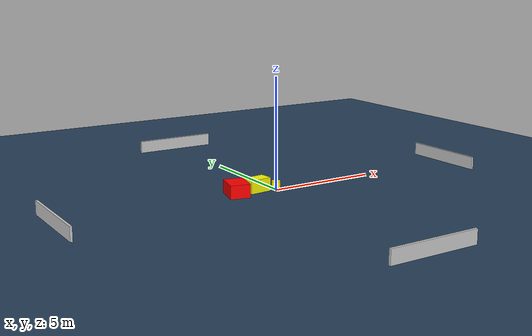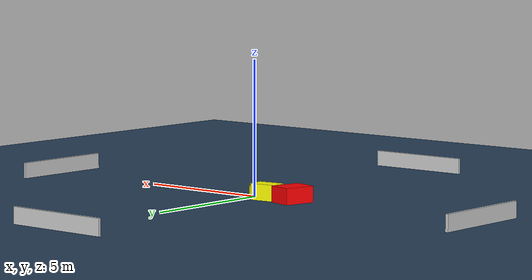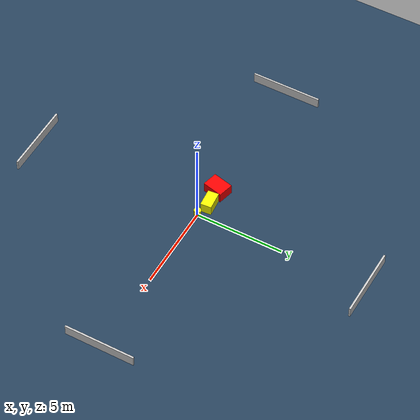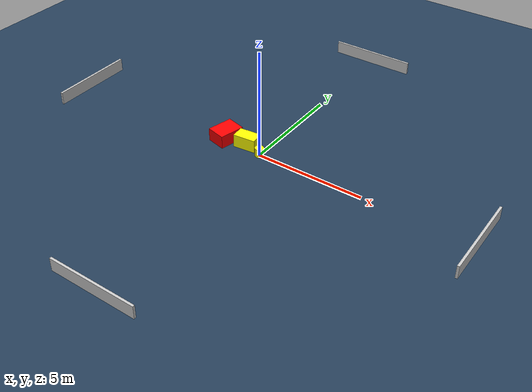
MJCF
<?xml version="1.0" ?>
<mujoco model="generated_environment">
  <option timestep="0.01" integrator="RK4" cone="elliptic"/>
  <default>
    <geom density="1"/>
  </default>
  <asset>
    <texture builtin="gradient" height="3072" name="skybox" rgb1="0.3 0.5 0.7" rgb2="0 0 0" type="skybox" width="512"/>
    <texture builtin="checker" height="300" name="groundplane" rgb1="0.2 0.3 0.4" rgb2="0.1 0.2 0.3" type="2d" width="300"/>
    <material name="groundplane" reflectance="0.2" texrepeat="5 5" texture="groundplane"/>
  </asset>
  <worldbody>
    <light dir="0 0 -1" directional="true" pos="0 0 1.5"/>
    <geom condim="3" friction="0.5 0.005 0.001" material="groundplane" name="floor" pos="0 0 0" size="0 0 0.05" type="plane"/>
    <body name="walls">
      <geom name="wall_1" condim="4" pos="-10.0 0.0 0.3" rgba="0.800000011920929 0.800000011920929 0.800000011920929 1.0" size="0.05 2.0 0.3" type="box"/>
      <geom name="wall_2" condim="4" pos="10.0 0.0 0.3" rgba="0.800000011920929 0.800000011920929 0.800000011920929 1.0" size="0.05 2.0 0.3" type="box"/>
      <geom name="wall_3" condim="4" pos="0.0 -10.0 0.3" rgba="0.800000011920929 0.800000011920929 0.800000011920929 1.0" size="2.0 0.05 0.3" type="box"/>
      <geom name="wall_4" condim="4" pos="0.0 10.0 0.3" rgba="0.800000011920929 0.800000011920929 0.800000011920929 1.0" size="2.0 0.05 0.3" type="box"/>
    </body>
    <body name="robot">
      <joint name="joint_x" type="slide" pos="0 0 0" axis="1 0 0"/>
      <joint name="joint_y" type="slide" pos="0 0 0" axis="0 1 0"/>
      <geom name="robot" type="cylinder" pos="0.0 0.0 0.2" size="0.2 0.2 0.0" mass="5.0" friction="1.0 0.005 0.0001" condim="4" rgba="1.0 1.0 0.0 1.0"/>
    </body>
    <body name="obstacle_1_movable">
      <geom name="obstacle_1_movable" condim="4" pos="-0.8291063478571459 0.26534198359262695 0.3" euler="0 0 5.378693838507709" friction="0.0 0.005 0.001" rgba="1.0 1.0 0.0 1.0" size="0.5132296013650042 0.30708707944825087 0.3" type="box" mass="0.1"/>
      <joint type="free"/>
    </body>
    <body name="obstacle_2_static">
      <geom name="obstacle_2_static" condim="4" pos="-1.9149836458830463 0.15114123326750592 0.3" euler="0 0 76.49731397233252" friction="0.0 0.005 0.001" rgba="1.0 0.0 0.0 1.0" size="0.5901996519610475 0.44414964521428935 0.3" type="box"/>
    </body>
  </worldbody>
  <actuator>
    <motor name="actuator_x" joint="joint_x" gear="1" ctrlrange="-1 1"/>
    <motor name="actuator_y" joint="joint_y" gear="1" ctrlrange="-1 1"/>
  </actuator>
</mujoco>
